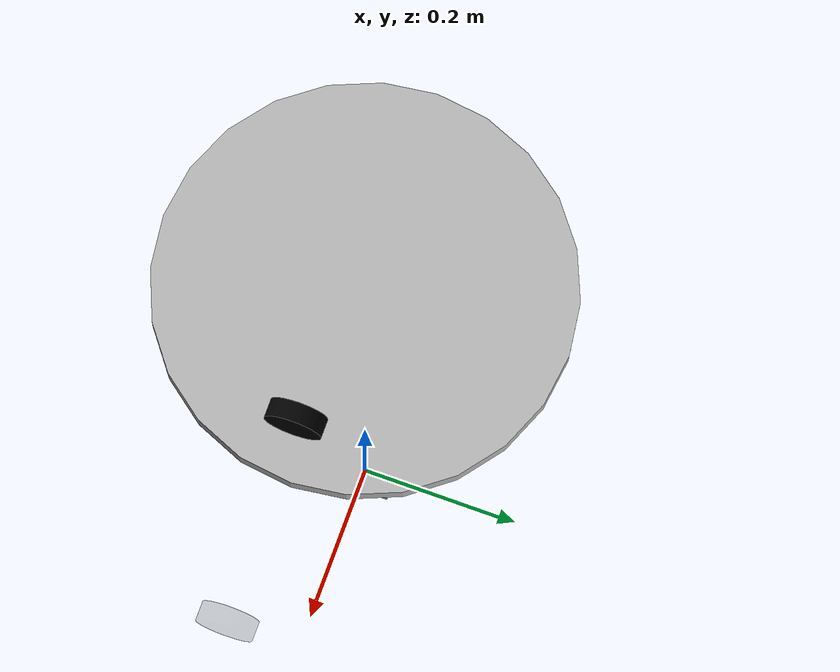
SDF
<?xml version="1.0" ?>
<sdf version="1.4">

  <model name="carologistics-robotino-3">

    <include>
      <uri>model://robotino3</uri>
      <pose>0 0 0 0 0 1.57</pose>
    </include>

    <include>
	    <name>webcam_pyro</name>
	    <uri>model://C920_ros</uri>
	    <pose>0.2 0 0.9 0 0 0</pose>
    </include>
    <include>
      <name>webcam_puck</name>
      <uri>model://webcam</uri>
      <pose>0.2 0 0.97 0 0 0</pose>
    </include>
    <include>
      <name>webcam_tag</name>
      <uri>model://webcam</uri>
      <pose>0.1 0 0.57 0 0 0</pose>
    </include>
    <link name="base_link">
      <pose>0 0 0.01 0 0 0</pose>
    </link>

    <joint name="base_link_joint" type="fixed">
      <child>base_link</child>
      <parent>robotino3::body</parent>
      <pose>0 0 0 0 0 0</pose>
    </joint>

    <joint name="sick_joint" type="revolute">
      <child>sick_laser::link</child>
      <parent>robotino3::body</parent>
      <pose>0.085 0 0.03 0 0 0</pose>
      <axis>
        <xyz>0 0 1</xyz>
        <limit>
          <upper>0</upper>
          <lower>0</lower>
        </limit>
      </axis>
    </joint>
    <joint name="webcam_sensor_joint" type="revolute">
      <child>webcam_puck::link</child>
      <parent>robotino3::body</parent>
      <pose>0.04 0 0.02 0 0 0</pose>
      <axis>
        <xyz>0 0 1</xyz>
        <limit>
          <upper>0</upper>
          <lower>0</lower>
        </limit>
      </axis>
    </joint>
    <joint name="webcam_tag_sensor_joint" type="revolute">
      <child>webcam_tag::link</child>
      <parent>robotino3::body</parent>
      <pose>0.04 0 0.02 0 0 0</pose>
      <axis>
        <xyz>0 0 1</xyz>
        <limit>
          <upper>0</upper>
          <lower>0</lower>
        </limit>
      </axis>
    </joint>
    <joint name="webcam_tag_vision_joint" type="revolute">
      <child>tag_vision::link</child>
      <parent>robotino3::body</parent>
      <pose>0.04 0 0.02 0 0 0</pose>
      <axis>
        <xyz>0 0 1</xyz>
        <limit>
          <upper>0</upper>
          <lower>0</lower>
        </limit>
      </axis>
    </joint>
    <joint name="gripper_joint" type="revolute">
      <child>gripper::link</child>
      <parent>robotino3::body</parent>
      <pose>0 0 0 0 0 0</pose>
      <axis>
        <xyz>0 0 1</xyz>
        <limit>
          <upper>0</upper>
          <lower>0</lower>
        </limit>
      </axis>
    </joint>
    <joint name="infrared_puck_sensor_joint" type="revolute">
      <child>infrared_sensor::link</child>
      <parent>robotino3::body</parent>
      <pose>0.21 0 0.02 0 0 0</pose>
      <axis>
        <xyz>0 0 1</xyz>
        <limit>
          <upper>0</upper>
          <lower>0</lower>
        </limit>
      </axis>
    </joint>
    <joint name="conveor_cam_joint" type="revolute">
      <child>conveyor_cam::link</child>
      <parent>robotino3::body</parent>
      <pose>0.23 0 0.02 0 0 0</pose>
      <axis>
        <xyz>0 0 1</xyz>
        <limit>
          <upper>0</upper>
          <lower>0</lower>
        </limit>
      </axis>
    </joint>

  </model>
</sdf>

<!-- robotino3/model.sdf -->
<sdf version="1.4">
  <model name="robotino3">
    <static>false</static>
    <link name="body">
      <pose>0 0 0.001 0 0 0</pose>
      <gravity>true</gravity>
      <inertial>
        <mass>30</mass>
        <pose>0 0 0.075 0 0 0</pose>
        <inertia>
	  <!-- according to http://en.wikipedia.org/wiki/List_of_moments_of_inertia for a solid cylinder of radius r=0.225, height h=0.15, mass m=30 -->
          <ixx>0.4359375</ixx>
          <ixy>0.0</ixy>
          <ixz>0.0</ixz>
          <iyy>0.4359375</iyy>
          <iyz>0.0</iyz>
          <izz>0.759375</izz>
        </inertia>
      </inertial>
      <visual name="body-visual">
        <pose>0.01 0 0.00 0 0 1.570795</pose>
        <geometry>
          <mesh>
            <uri>model://robotino3/meshes/robotino3.dae</uri>
            <scale>0.001 0.001 0.001</scale>
          </mesh>
        </geometry>
        <cast_shadows>false</cast_shadows>
      </visual>

      <collision name="body1-collision">
        <pose>0 0 0.735 0 0 0</pose>
        <geometry>
          <cylinder>
            <length>0.07</length>
            <radius>0.225</radius>
          </cylinder>
        </geometry>
        <surface>
          <friction>
            <ode>
              <mu>0.2</mu>
              <mu2>0.2</mu2>
              <slip1>0.8</slip1>
              <slip2>0.8</slip2>
            </ode>
          </friction>
          <contact>
            <ode>
              <min_depth>0.05</min_depth>
            </ode>
          </contact>
        </surface>
      </collision>

      <collision name="body2-collision">
        <pose>0 0 0.35 0 0 0</pose>
        <geometry>
          <cylinder>
            <length>0.68</length>
            <radius>0.06</radius>
          </cylinder>
        </geometry>
        <surface>
          <friction>
            <ode>
              <mu>0.2</mu>
              <mu2>0.2</mu2>
              <slip1>0.8</slip1>
              <slip2>0.8</slip2>
            </ode>
          </friction>
          <contact>
            <ode>
              <min_depth>0.05</min_depth>
            </ode>
          </contact>
        </surface>
      </collision>

      <collision name="body3-collision">
        <pose>0 0 0.035 0 0 0</pose>
        <geometry>
          <cylinder>
            <length>0.07</length>
            <radius>0.225</radius>
          </cylinder>
        </geometry>
        <surface>
          <friction>
            <ode>
              <mu>0.2</mu>
              <mu2>0.2</mu2>
              <slip1>0.8</slip1>
              <slip2>0.8</slip2>
            </ode>
          </friction>
          <contact>
            <ode>
              <min_depth>0.05</min_depth>
            </ode>
          </contact>
        </surface>
      </collision>
      <visual name="tower">
        <pose>0.00 0.00 0.43 0 0 0</pose>
        <geometry>
          <box>
            <size>0.09 0.09 0.70</size>
          </box>
        </geometry>
      </visual>
      <visual name="tower_plate">
        <pose>0 0 0.79 0 0 0</pose>
        <geometry>
          <cylinder>
            <length>0.02</length>
            <radius>0.225</radius>
          </cylinder>
        </geometry>
      </visual>
    </link>

    <plugin name="Motor" filename="libmotor.so"/>
    <plugin name="Gyro" filename="libgyro.so"/>
    <plugin name="GPS" filename="libgps.so"/>
    <plugin name="LightSignalDetection" filename="liblight_signal_detection.so"/>
  </model>
</sdf>

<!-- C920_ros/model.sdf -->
<sdf version="1.4">
	<model name="C920">
		<link name="body">

			<gravity>false</gravity>

			<inertial>
				<mass>0.02</mass>
			</inertial>

			<visual name="visual">
				<pose>0.2 0 0 0 1.6 0</pose>
				<geometry>
					<cylinder>
						<length>0.02</length>
						<radius>0.03</radius>
					</cylinder>
				</geometry>
				<cast_shadows>false</cast_shadows>
				<material>
					<ambient>0.0 0.0 0.0 0.1</ambient>
					<diffuse>0.0 0.0 0.0 0.11</diffuse>
				</material>
			</visual>

			<sensor type="camera" name="platform_camera">
				<update_rate>30.0</update_rate>
				<camera name="platform_camera">
					<horizontal_fov>1.3962634</horizontal_fov>
					<image>
						<width>1200</width>
						<height>700</height>
						<format>R8G8B8</format>
					</image>
					<clip>
						<near>0.02</near>
						<far>300</far>
					</clip>
				</camera>
				<!-- Let robotNamespace empty - Use parent name as namespace -->
				<plugin name="camera_controller" filename="libgazebo_ros_camera.so">
					<robotNamespace/>
					<topicName>hardware/scan</topicName>
					<alwaysOn>true</alwaysOn>
					<updateRate>0.0</updateRate>
					<cameraName>hardware/camera/platform_camera</cameraName>
					<imageTopicName>image_raw</imageTopicName>
					<cameraInfoTopicName>camera_info</cameraInfoTopicName>
					<frameName>platform_camera_link</frameName>
				</plugin>
			</sensor>
		</link>
	</model>
</sdf>

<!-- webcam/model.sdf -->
<sdf version="1.4">
  <model name="webcam">
    <static>true</static>
    <link name="link">
      <gravity>false</gravity>
      <inertial>
        <mass>0.02</mass>
      </inertial>
      <visual name="visual">
	<pose>0 0 0 0 1.6 0</pose>
        <geometry>
          <cylinder>
	    <length>0.02</length>
	    <radius>0.03</radius>
	  </cylinder>
        </geometry>
	<cast_shadows>false</cast_shadows>
	<material>
	  <ambient>0.0 0.0 0.0 1.0</ambient>
	  <diffuse>0.0 0.0 0.0 1.0</diffuse>
	</material>
      </visual>
      <sensor name="webcam_sensor" type="camera">
        <pose>0 0 0 0 0 0</pose>
        <always_on>1</always_on>
        <update_rate>2.0</update_rate>
        <visualize>false</visualize>
	<camera name="front_webcam">
	  <horizontal_fov>1.08</horizontal_fov>
	  <image>
	    <width>320</width>
	    <height>240</height>
	    <format>R8G8B8</format>
	  </image>
	</camera>
      </sensor>
      <!-- There is no plugin for the camera because you can access the shared memory pointer for the camera directly -->
    </link>
  </model>
</sdf>
